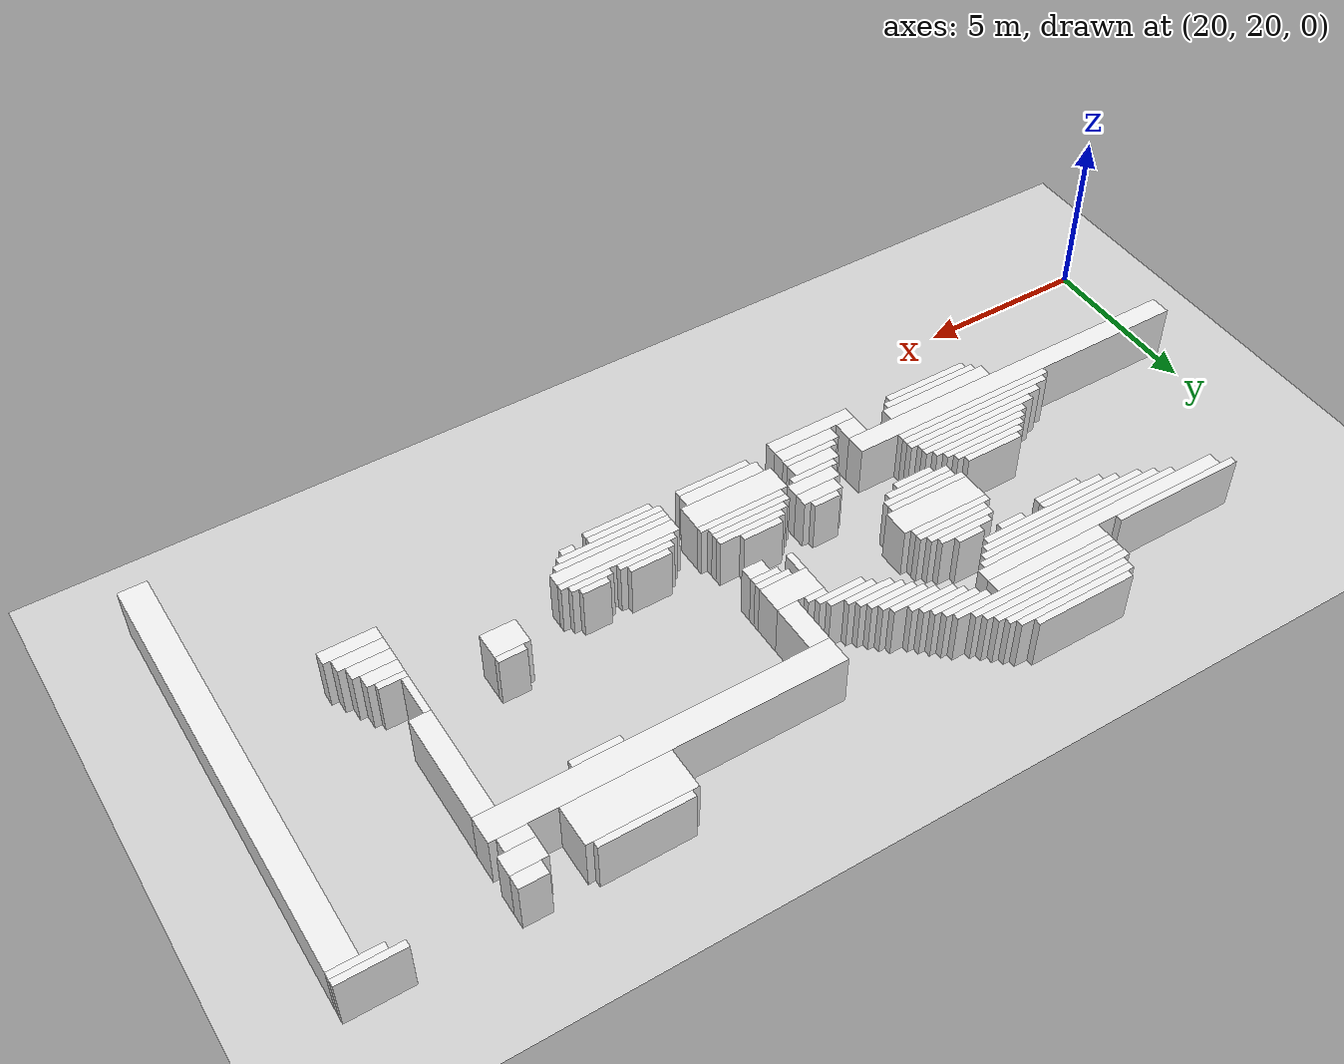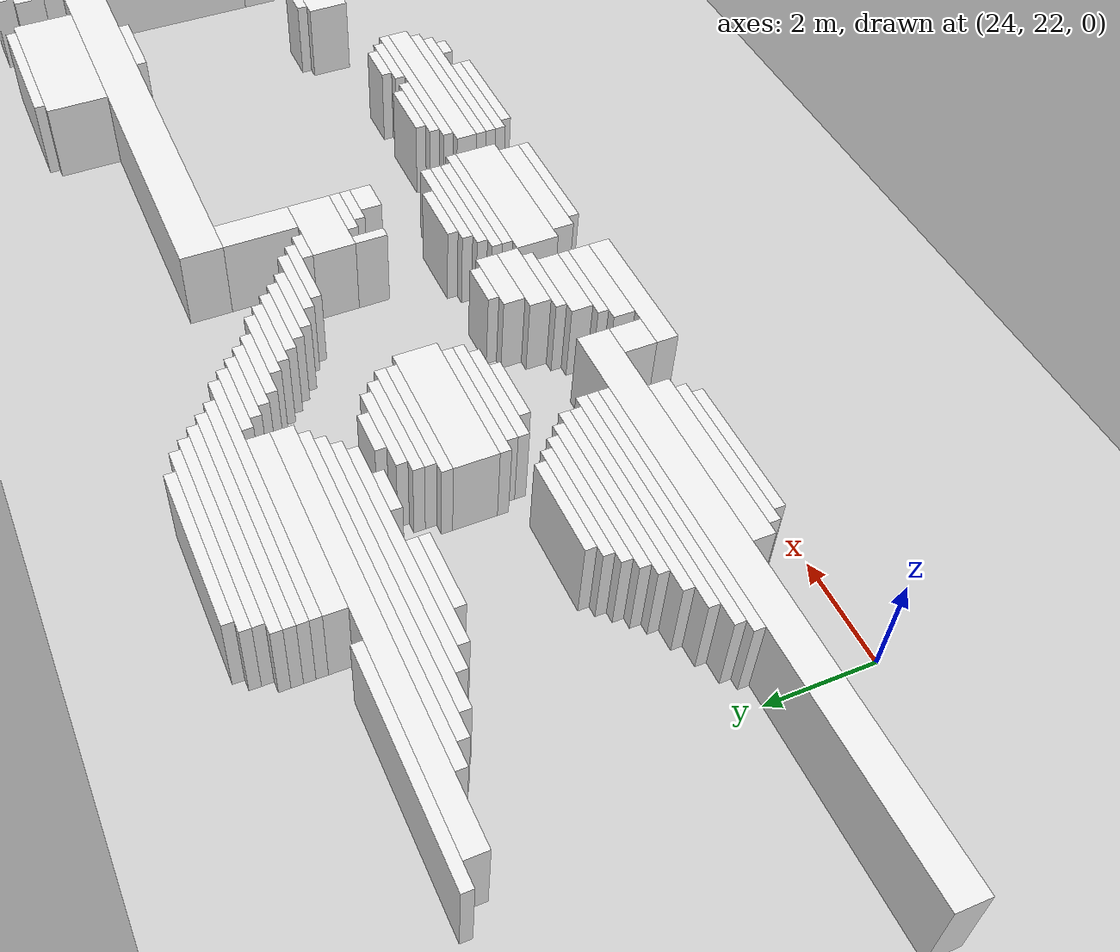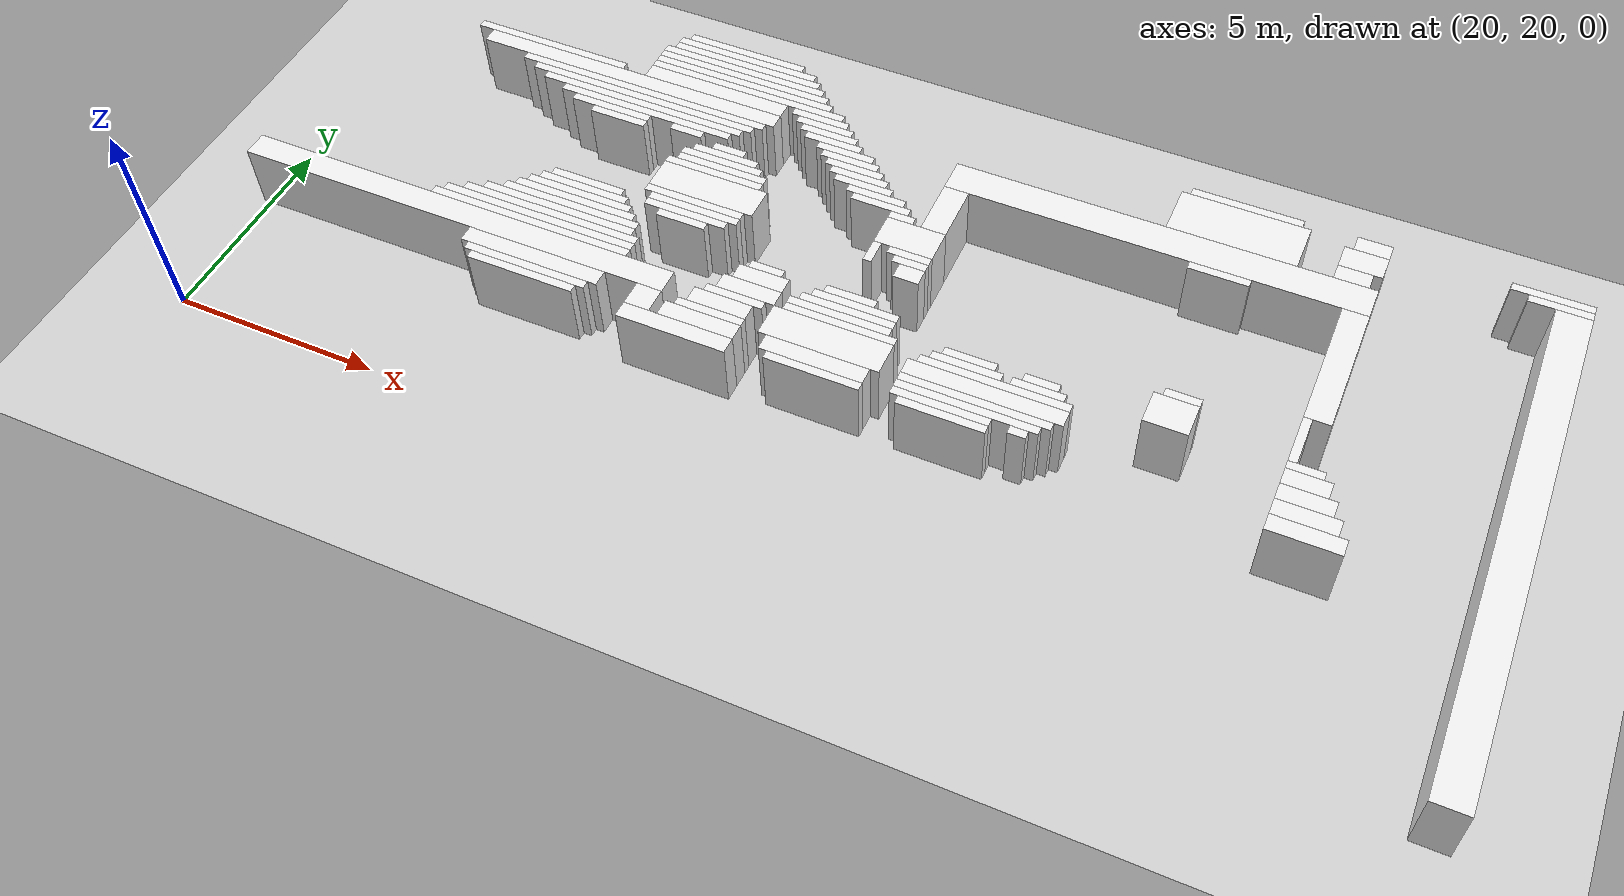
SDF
<sdf version="1.7">
 <world name="default">
  <model name="ground_plane">
   <static>1</static>
   <link name="link">
    <collision name="collision">
     <geometry><plane><normal>0 0 1</normal><size>120 120</size></plane></geometry>
    </collision>
    <visual name="visual">
     <geometry><plane><normal>0 0 1</normal><size>120 120</size></plane></geometry>
     <material>
      <script><uri>file://media/materials/scripts/gazebo.material</uri><name>Gazebo/Grey</name></script>
     </material>
    </visual>
   </link>
  </model>
  <model name="random_complex_02_model">
   <static>1</static>
   <link name="obs_727">
    <pose>28.9000 31.1000 0.8000 0 0 0</pose>
    <collision name="obs_727_col"><geometry><box><size>3.0000 0.2000 1.6000</size></box></geometry></collision>
    <visual name="obs_727_vis">
     <geometry><box><size>3.0000 0.2000 1.6000</size></box></geometry>
     <material>
      <script><uri>file://media/materials/scripts/gazebo.material</uri><name>Gazebo/White</name></script>
     </material>
    </visual>
   </link>
   <link name="obs_736">
    <pose>29.0000 30.9000 0.8000 0 0 0</pose>
    <collision name="obs_736_col"><geometry><box><size>3.6000 0.2000 1.6000</size></box></geometry></collision>
    <visual name="obs_736_vis">
     <geometry><box><size>3.6000 0.2000 1.6000</size></box></geometry>
     <material>
      <script><uri>file://media/materials/scripts/gazebo.material</uri><name>Gazebo/White</name></script>
     </material>
    </visual>
   </link>
   <link name="obs_737">
    <pose>41.5000 30.9000 0.8000 0 0 0</pose>
    <collision name="obs_737_col"><geometry><box><size>2.6000 0.2000 1.6000</size></box></geometry></collision>
    <visual name="obs_737_vis">
     <geometry><box><size>2.6000 0.2000 1.6000</size></box></geometry>
     <material>
      <script><uri>file://media/materials/scripts/gazebo.material</uri><name>Gazebo/White</name></script>
     </material>
    </visual>
   </link>
   <link name="obs_738">
    <pose>48.3000 30.9000 0.8000 0 0 0</pose>
    <collision name="obs_738_col"><geometry><box><size>1.8000 0.2000 1.6000</size></box></geometry></collision>
    <visual name="obs_738_vis">
     <geometry><box><size>1.8000 0.2000 1.6000</size></box></geometry>
     <material>
      <script><uri>file://media/materials/scripts/gazebo.material</uri><name>Gazebo/White</name></script>
     </material>
    </visual>
   </link>
   <link name="obs_742">
    <pose>44.4000 30.8000 0.8000 0 0 0</pose>
    <collision name="obs_742_col"><geometry><box><size>0.8000 0.4000 1.6000</size></box></geometry></collision>
    <visual name="obs_742_vis">
     <geometry><box><size>0.8000 0.4000 1.6000</size></box></geometry>
     <material>
      <script><uri>file://media/materials/scripts/gazebo.material</uri><name>Gazebo/White</name></script>
     </material>
    </visual>
   </link>
   <link name="obs_748">
    <pose>29.1000 30.7000 0.8000 0 0 0</pose>
    <collision name="obs_748_col"><geometry><box><size>3.8000 0.2000 1.6000</size></box></geometry></collision>
    <visual name="obs_748_vis">
     <geometry><box><size>3.8000 0.2000 1.6000</size></box></geometry>
     <material>
      <script><uri>file://media/materials/scripts/gazebo.material</uri><name>Gazebo/White</name></script>
     </material>
    </visual>
   </link>
   <link name="obs_749">
    <pose>48.5000 30.7000 0.8000 0 0 0</pose>
    <collision name="obs_749_col"><geometry><box><size>1.4000 0.2000 1.6000</size></box></geometry></collision>
    <visual name="obs_749_vis">
     <geometry><box><size>1.4000 0.2000 1.6000</size></box></geometry>
     <material>
      <script><uri>file://media/materials/scripts/gazebo.material</uri><name>Gazebo/White</name></script>
     </material>
    </visual>
   </link>
   <link name="obs_758">
    <pose>29.1000 30.5000 0.8000 0 0 0</pose>
    <collision name="obs_758_col"><geometry><box><size>4.2000 0.2000 1.6000</size></box></geometry></collision>
    <visual name="obs_758_vis">
     <geometry><box><size>4.2000 0.2000 1.6000</size></box></geometry>
     <material>
      <script><uri>file://media/materials/scripts/gazebo.material</uri><name>Gazebo/White</name></script>
     </material>
    </visual>
   </link>
   <link name="obs_764">
    <pose>29.2000 30.3000 0.8000 0 0 0</pose>
    <collision name="obs_764_col"><geometry><box><size>4.4000 0.2000 1.6000</size></box></geometry></collision>
    <visual name="obs_764_vis">
     <geometry><box><size>4.4000 0.2000 1.6000</size></box></geometry>
     <material>
      <script><uri>file://media/materials/scripts/gazebo.material</uri><name>Gazebo/White</name></script>
     </material>
    </visual>
   </link>
   <link name="obs_767">
    <pose>44.3000 30.3000 0.8000 0 0 0</pose>
    <collision name="obs_767_col"><geometry><box><size>1.0000 0.6000 1.6000</size></box></geometry></collision>
    <visual name="obs_767_vis">
     <geometry><box><size>1.0000 0.6000 1.6000</size></box></geometry>
     <material>
      <script><uri>file://media/materials/scripts/gazebo.material</uri><name>Gazebo/White</name></script>
     </material>
    </visual>
   </link>
   <link name="obs_772">
    <pose>29.3000 30.1000 0.8000 0 0 0</pose>
    <collision name="obs_772_col"><geometry><box><size>4.6000 0.2000 1.6000</size></box></geometry></collision>
    <visual name="obs_772_vis">
     <geometry><box><size>4.6000 0.2000 1.6000</size></box></geometry>
     <material>
      <script><uri>file://media/materials/scripts/gazebo.material</uri><name>Gazebo/White</name></script>
     </material>
    </visual>
   </link>
   <link name="obs_779">
    <pose>29.5000 29.9000 0.8000 0 0 0</pose>
    <collision name="obs_779_col"><geometry><box><size>5.0000 0.2000 1.6000</size></box></geometry></collision>
    <visual name="obs_779_vis">
     <geometry><box><size>5.0000 0.2000 1.6000</size></box></geometry>
     <material>
      <script><uri>file://media/materials/scripts/gazebo.material</uri><name>Gazebo/White</name></script>
     </material>
    </visual>
   </link>
   <link name="obs_780">
    <pose>41.5000 30.2000 0.8000 0 0 0</pose>
    <collision name="obs_780_col"><geometry><box><size>3.0000 1.2000 1.6000</size></box></geometry></collision>
    <visual name="obs_780_vis">
     <geometry><box><size>3.0000 1.2000 1.6000</size></box></geometry>
     <material>
      <script><uri>file://media/materials/scripts/gazebo.material</uri><name>Gazebo/White</name></script>
     </material>
    </visual>
   </link>
   <link name="obs_784">
    <pose>44.2000 29.8000 0.8000 0 0 0</pose>
    <collision name="obs_784_col"><geometry><box><size>0.8000 0.4000 1.6000</size></box></geometry></collision>
    <visual name="obs_784_vis">
     <geometry><box><size>0.8000 0.4000 1.6000</size></box></geometry>
     <material>
      <script><uri>file://media/materials/scripts/gazebo.material</uri><name>Gazebo/White</name></script>
     </material>
    </visual>
   </link>
   <link name="obs_790">
    <pose>31.5000 29.7000 0.8000 0 0 0</pose>
    <collision name="obs_790_col"><geometry><box><size>1.4000 0.2000 1.6000</size></box></geometry></collision>
    <visual name="obs_790_vis">
     <geometry><box><size>1.4000 0.2000 1.6000</size></box></geometry>
     <material>
      <script><uri>file://media/materials/scripts/gazebo.material</uri><name>Gazebo/White</name></script>
     </material>
    </visual>
   </link>
   <link name="obs_792">
    <pose>28.8000 29.6000 0.8000 0 0 0</pose>
    <collision name="obs_792_col"><geometry><box><size>3.6000 0.4000 1.6000</size></box></geometry></collision>
    <visual name="obs_792_vis">
     <geometry><box><size>3.6000 0.4000 1.6000</size></box></geometry>
     <material>
      <script><uri>file://media/materials/scripts/gazebo.material</uri><name>Gazebo/White</name></script>
     </material>
    </visual>
   </link>
   <link name="obs_797">
    <pose>24.4000 29.5000 0.8000 0 0 0</pose>
    <collision name="obs_797_col"><geometry><box><size>4.0000 0.2000 1.6000</size></box></geometry></collision>
    <visual name="obs_797_vis">
     <geometry><box><size>4.0000 0.2000 1.6000</size></box></geometry>
     <material>
      <script><uri>file://media/materials/scripts/gazebo.material</uri><name>Gazebo/White</name></script>
     </material>
    </visual>
   </link>
   <link name="obs_798">
    <pose>31.7000 29.5000 0.8000 0 0 0</pose>
    <collision name="obs_798_col"><geometry><box><size>1.4000 0.2000 1.6000</size></box></geometry></collision>
    <visual name="obs_798_vis">
     <geometry><box><size>1.4000 0.2000 1.6000</size></box></geometry>
     <material>
      <script><uri>file://media/materials/scripts/gazebo.material</uri><name>Gazebo/White</name></script>
     </material>
    </visual>
   </link>
   <link name="obs_804">
    <pose>31.9000 29.3000 0.8000 0 0 0</pose>
    <collision name="obs_804_col"><geometry><box><size>1.4000 0.2000 1.6000</size></box></geometry></collision>
    <visual name="obs_804_vis">
     <geometry><box><size>1.4000 0.2000 1.6000</size></box></geometry>
     <material>
      <script><uri>file://media/materials/scripts/gazebo.material</uri><name>Gazebo/White</name></script>
     </material>
    </visual>
   </link>
   <link name="obs_808">
    <pose>26.7000 29.2000 0.8000 0 0 0</pose>
    <collision name="obs_808_col"><geometry><box><size>7.8000 0.4000 1.6000</size></box></geometry></collision>
    <visual name="obs_808_vis">
     <geometry><box><size>7.8000 0.4000 1.6000</size></box></geometry>
     <material>
      <script><uri>file://media/materials/scripts/gazebo.material</uri><name>Gazebo/White</name></script>
     </material>
    </visual>
   </link>
   <link name="obs_813">
    <pose>32.1000 29.1000 0.8000 0 0 0</pose>
    <collision name="obs_813_col"><geometry><box><size>1.4000 0.2000 1.6000</size></box></geometry></collision>
    <visual name="obs_813_vis">
     <geometry><box><size>1.4000 0.2000 1.6000</size></box></geometry>
     <material>
      <script><uri>file://media/materials/scripts/gazebo.material</uri><name>Gazebo/White</name></script>
     </material>
    </visual>
   </link>
   <link name="obs_814">
    <pose>39.9000 29.2000 0.8000 0 0 0</pose>
    <collision name="obs_814_col"><geometry><box><size>9.8000 0.8000 1.6000</size></box></geometry></collision>
    <visual name="obs_814_vis">
     <geometry><box><size>9.8000 0.8000 1.6000</size></box></geometry>
     <material>
      <script><uri>file://media/materials/scripts/gazebo.material</uri><name>Gazebo/White</name></script>
     </material>
    </visual>
   </link>
   <link name="obs_823">
    <pose>27.2000 28.9000 0.8000 0 0 0</pose>
    <collision name="obs_823_col"><geometry><box><size>6.4000 0.2000 1.6000</size></box></geometry></collision>
    <visual name="obs_823_vis">
     <geometry><box><size>6.4000 0.2000 1.6000</size></box></geometry>
     <material>
      <script><uri>file://media/materials/scripts/gazebo.material</uri><name>Gazebo/White</name></script>
     </material>
    </visual>
   </link>
   <link name="obs_824">
    <pose>32.5000 28.9000 0.8000 0 0 0</pose>
    <collision name="obs_824_col"><geometry><box><size>1.4000 0.2000 1.6000</size></box></geometry></collision>
    <visual name="obs_824_vis">
     <geometry><box><size>1.4000 0.2000 1.6000</size></box></geometry>
     <material>
      <script><uri>file://media/materials/scripts/gazebo.material</uri><name>Gazebo/White</name></script>
     </material>
    </visual>
   </link>
   <link name="obs_832">
    <pose>27.3000 28.7000 0.8000 0 0 0</pose>
    <collision name="obs_832_col"><geometry><box><size>5.8000 0.2000 1.6000</size></box></geometry></collision>
    <visual name="obs_832_vis">
     <geometry><box><size>5.8000 0.2000 1.6000</size></box></geometry>
     <material>
      <script><uri>file://media/materials/scripts/gazebo.material</uri><name>Gazebo/White</name></script>
     </material>
    </visual>
   </link>
   <link name="obs_833">
    <pose>32.7000 28.7000 0.8000 0 0 0</pose>
    <collision name="obs_833_col"><geometry><box><size>1.4000 0.2000 1.6000</size></box></geometry></collision>
    <visual name="obs_833_vis">
     <geometry><box><size>1.4000 0.2000 1.6000</size></box></geometry>
     <material>
      <script><uri>file://media/materials/scripts/gazebo.material</uri><name>Gazebo/White</name></script>
     </material>
    </visual>
   </link>
   <link name="obs_834">
    <pose>41.5000 28.7000 0.8000 0 0 0</pose>
    <collision name="obs_834_col"><geometry><box><size>1.4000 0.2000 1.6000</size></box></geometry></collision>
    <visual name="obs_834_vis">
     <geometry><box><size>1.4000 0.2000 1.6000</size></box></geometry>
     <material>
      <script><uri>file://media/materials/scripts/gazebo.material</uri><name>Gazebo/White</name></script>
     </material>
    </visual>
   </link>
   <link name="obs_843">
    <pose>27.4000 28.5000 0.8000 0 0 0</pose>
    <collision name="obs_843_col"><geometry><box><size>5.2000 0.2000 1.6000</size></box></geometry></collision>
    <visual name="obs_843_vis">
     <geometry><box><size>5.2000 0.2000 1.6000</size></box></geometry>
     <material>
      <script><uri>file://media/materials/scripts/gazebo.material</uri><name>Gazebo/White</name></script>
     </material>
    </visual>
   </link>
   <link name="obs_844">
    <pose>32.9000 28.5000 0.8000 0 0 0</pose>
    <collision name="obs_844_col"><geometry><box><size>1.4000 0.2000 1.6000</size></box></geometry></collision>
    <visual name="obs_844_vis">
     <geometry><box><size>1.4000 0.2000 1.6000</size></box></geometry>
     <material>
      <script><uri>file://media/materials/scripts/gazebo.material</uri><name>Gazebo/White</name></script>
     </material>
    </visual>
   </link>
   <link name="obs_855">
    <pose>27.6000 28.3000 0.8000 0 0 0</pose>
    <collision name="obs_855_col"><geometry><box><size>4.4000 0.2000 1.6000</size></box></geometry></collision>
    <visual name="obs_855_vis">
     <geometry><box><size>4.4000 0.2000 1.6000</size></box></geometry>
     <material>
      <script><uri>file://media/materials/scripts/gazebo.material</uri><name>Gazebo/White</name></script>
     </material>
    </visual>
   </link>
   <link name="obs_856">
    <pose>33.1000 28.3000 0.8000 0 0 0</pose>
    <collision name="obs_856_col"><geometry><box><size>1.4000 0.2000 1.6000</size></box></geometry></collision>
    <visual name="obs_856_vis">
     <geometry><box><size>1.4000 0.2000 1.6000</size></box></geometry>
     <material>
      <script><uri>file://media/materials/scripts/gazebo.material</uri><name>Gazebo/White</name></script>
     </material>
    </visual>
   </link>
   <link name="obs_862">
    <pose>26.8000 28.1000 0.8000 0 0 0</pose>
    <collision name="obs_862_col"><geometry><box><size>2.0000 0.2000 1.6000</size></box></geometry></collision>
    <visual name="obs_862_vis">
     <geometry><box><size>2.0000 0.2000 1.6000</size></box></geometry>
     <material>
      <script><uri>file://media/materials/scripts/gazebo.material</uri><name>Gazebo/White</name></script>
     </material>
    </visual>
   </link>
   <link name="obs_863">
    <pose>28.8000 28.1000 0.8000 0 0 0</pose>
    <collision name="obs_863_col"><geometry><box><size>0.8000 0.2000 1.6000</size></box></geometry></collision>
    <visual name="obs_863_vis">
     <geometry><box><size>0.8000 0.2000 1.6000</size></box></geometry>
     <material>
      <script><uri>file://media/materials/scripts/gazebo.material</uri><name>Gazebo/White</name></script>
     </material>
    </visual>
   </link>
   <link name="obs_864">
    <pose>33.3000 28.1000 0.8000 0 0 0</pose>
    <collision name="obs_864_col"><geometry><box><size>1.4000 0.2000 1.6000</size></box></geometry></collision>
    <visual name="obs_864_vis">
     <geometry><box><size>1.4000 0.2000 1.6000</size></box></geometry>
     <material>
      <script><uri>file://media/materials/scripts/gazebo.material</uri><name>Gazebo/White</name></script>
     </material>
    </visual>
   </link>
   <link name="obs_871">
    <pose>27.1000 27.9000 0.8000 0 0 0</pose>
    <collision name="obs_871_col"><geometry><box><size>1.4000 0.2000 1.6000</size></box></geometry></collision>
    <visual name="obs_871_vis">
     <geometry><box><size>1.4000 0.2000 1.6000</size></box></geometry>
     <material>
      <script><uri>file://media/materials/scripts/gazebo.material</uri><name>Gazebo/White</name></script>
     </material>
    </visual>
   </link>
   <link name="obs_872">
    <pose>30.0000 27.9000 0.8000 0 0 0</pose>
    <collision name="obs_872_col"><geometry><box><size>0.8000 0.2000 1.6000</size></box></geometry></collision>
    <visual name="obs_872_vis">
     <geometry><box><size>0.8000 0.2000 1.6000</size></box></geometry>
     <material>
      <script><uri>file://media/materials/scripts/gazebo.material</uri><name>Gazebo/White</name></script>
     </material>
    </visual>
   </link>
   <link name="obs_873">
    <pose>33.7000 27.9000 0.8000 0 0 0</pose>
    <collision name="obs_873_col"><geometry><box><size>1.4000 0.2000 1.6000</size></box></geometry></collision>
    <visual name="obs_873_vis">
     <geometry><box><size>1.4000 0.2000 1.6000</size></box></geometry>
     <material>
      <script><uri>file://media/materials/scripts/gazebo.material</uri><name>Gazebo/White</name></script>
     </material>
    </visual>
   </link>
   <link name="obs_881">
    <pose>30.0000 27.7000 0.8000 0 0 0</pose>
    <collision name="obs_881_col"><geometry><box><size>1.6000 0.2000 1.6000</size></box></geometry></collision>
    <visual name="obs_881_vis">
     <geometry><box><size>1.6000 0.2000 1.6000</size></box></geometry>
     <material>
      <script><uri>file://media/materials/scripts/gazebo.material</uri><name>Gazebo/White</name></script>
     </material>
    </visual>
   </link>
   <link name="obs_882">
    <pose>33.9000 27.7000 0.8000 0 0 0</pose>
    <collision name="obs_882_col"><geometry><box><size>1.4000 0.2000 1.6000</size></box></geometry></collision>
    <visual name="obs_882_vis">
     <geometry><box><size>1.4000 0.2000 1.6000</size></box></geometry>
     <material>
      <script><uri>file://media/materials/scripts/gazebo.material</uri><name>Gazebo/White</name></script>
     </material>
    </visual>
   </link>
   <link name="obs_883">
    <pose>35.3000 28.1000 0.8000 0 0 0</pose>
    <collision name="obs_883_col"><geometry><box><size>0.6000 1.4000 1.6000</size></box></geometry></collision>
    <visual name="obs_883_vis">
     <geometry><box><size>0.6000 1.4000 1.6000</size></box></geometry>
     <material>
      <script><uri>file://media/materials/scripts/gazebo.material</uri><name>Gazebo/White</name></script>
     </material>
    </visual>
   </link>
   <link name="obs_890">
    <pose>30.0000 27.5000 0.8000 0 0 0</pose>
    <collision name="obs_890_col"><geometry><box><size>2.0000 0.2000 1.6000</size></box></geometry></collision>
    <visual name="obs_890_vis">
     <geometry><box><size>2.0000 0.2000 1.6000</size></box></geometry>
     <material>
      <script><uri>file://media/materials/scripts/gazebo.material</uri><name>Gazebo/White</name></script>
     </material>
    </visual>
   </link>
   <link name="obs_891">
    <pose>34.5000 27.5000 0.8000 0 0 0</pose>
    <collision name="obs_891_col"><geometry><box><size>0.6000 0.2000 1.6000</size></box></geometry></collision>
    <visual name="obs_891_vis">
     <geometry><box><size>0.6000 0.2000 1.6000</size></box></geometry>
     <material>
      <script><uri>file://media/materials/scripts/gazebo.material</uri><name>Gazebo/White</name></script>
     </material>
    </visual>
   </link>
   <link name="obs_897">
    <pose>30.1000 27.3000 0.8000 0 0 0</pose>
    <collision name="obs_897_col"><geometry><box><size>2.2000 0.2000 1.6000</size></box></geometry></collision>
    <visual name="obs_897_vis">
     <geometry><box><size>2.2000 0.2000 1.6000</size></box></geometry>
     <material>
      <script><uri>file://media/materials/scripts/gazebo.material</uri><name>Gazebo/White</name></script>
     </material>
    </visual>
   </link>
   <link name="obs_904">
    <pose>30.0000 27.1000 0.8000 0 0 0</pose>
    <collision name="obs_904_col"><geometry><box><size>2.4000 0.2000 1.6000</size></box></geometry></collision>
    <visual name="obs_904_vis">
     <geometry><box><size>2.4000 0.2000 1.6000</size></box></geometry>
     <material>
      <script><uri>file://media/materials/scripts/gazebo.material</uri><name>Gazebo/White</name></script>
     </material>
    </visual>
   </link>
   <link name="obs_914">
    <pose>34.9000 27.0000 0.8000 0 0 0</pose>
    <collision name="obs_914_col"><geometry><box><size>1.4000 0.8000 1.6000</size></box></geometry></collision>
    <visual name="obs_914_vis">
     <geometry><box><size>1.4000 0.8000 1.6000</size></box></geometry>
     <material>
      <script><uri>file://media/materials/scripts/gazebo.material</uri><name>Gazebo/White</name></script>
     </material>
    </visual>
   </link>
   <link name="obs_925">
    <pose>35.1000 26.5000 0.8000 0 0 0</pose>
    <collision name="obs_925_col"><geometry><box><size>1.0000 0.2000 1.6000</size></box></geometry></collision>
    <visual name="obs_925_vis">
     <geometry><box><size>1.0000 0.2000 1.6000</size></box></geometry>
     <material>
      <script><uri>file://media/materials/scripts/gazebo.material</uri><name>Gazebo/White</name></script>
     </material>
    </visual>
   </link>
   <link name="obs_926">
    <pose>30.1000 26.6000 0.8000 0 0 0</pose>
    <collision name="obs_926_col"><geometry><box><size>2.6000 0.8000 1.6000</size></box></geometry></collision>
    <visual name="obs_926_vis">
     <geometry><box><size>2.6000 0.8000 1.6000</size></box></geometry>
     <material>
      <script><uri>file://media/materials/scripts/gazebo.material</uri><name>Gazebo/White</name></script>
     </material>
    </visual>
   </link>
   <link name="obs_935">
    <pose>35.2000 26.3000 0.8000 0 0 0</pose>
    <collision name="obs_935_col"><geometry><box><size>0.8000 0.2000 1.6000</size></box></geometry></collision>
    <visual name="obs_935_vis">
     <geometry><box><size>0.8000 0.2000 1.6000</size></box></geometry>
     <material>
      <script><uri>file://media/materials/scripts/gazebo.material</uri><name>Gazebo/White</name></script>
     </material>
    </visual>
   </link>
   <link name="obs_937">
    <pose>34.3000 26.3000 0.8000 0 0 0</pose>
    <collision name="obs_937_col"><geometry><box><size>0.2000 0.6000 1.6000</size></box></geometry></collision>
    <visual name="obs_937_vis">
     <geometry><box><size>0.2000 0.6000 1.6000</size></box></geometry>
     <material>
      <script><uri>file://media/materials/scripts/gazebo.material</uri><name>Gazebo/White</name></script>
     </material>
    </visual>
   </link>
   <link name="obs_942">
    <pose>30.0000 26.1000 0.8000 0 0 0</pose>
    <collision name="obs_942_col"><geometry><box><size>2.4000 0.2000 1.6000</size></box></geometry></collision>
    <visual name="obs_942_vis">
     <geometry><box><size>2.4000 0.2000 1.6000</size></box></geometry>
     <material>
      <script><uri>file://media/materials/scripts/gazebo.material</uri><name>Gazebo/White</name></script>
     </material>
    </visual>
   </link>
   <link name="obs_947">
    <pose>35.3000 26.0000 0.8000 0 0 0</pose>
    <collision name="obs_947_col"><geometry><box><size>0.6000 0.4000 1.6000</size></box></geometry></collision>
    <visual name="obs_947_vis">
     <geometry><box><size>0.6000 0.4000 1.6000</size></box></geometry>
     <material>
      <script><uri>file://media/materials/scripts/gazebo.material</uri><name>Gazebo/White</name></script>
     </material>
    </visual>
   </link>
   <link name="obs_951">
    <pose>30.1000 25.9000 0.8000 0 0 0</pose>
    <collision name="obs_951_col"><geometry><box><size>2.2000 0.2000 1.6000</size></box></geometry></collision>
    <visual name="obs_951_vis">
     <geometry><box><size>2.2000 0.2000 1.6000</size></box></geometry>
     <material>
      <script><uri>file://media/materials/scripts/gazebo.material</uri><name>Gazebo/White</name></script>
     </material>
    </visual>
   </link>
   <link name="obs_952">
    <pose>44.5000 27.2000 0.8000 0 0 0</pose>
    <collision name="obs_952_col"><geometry><box><size>0.6000 3.2000 1.6000</size></box></geometry></collision>
    <visual name="obs_952_vis">
     <geometry><box><size>0.6000 3.2000 1.6000</size></box></geometry>
     <material>
      <script><uri>file://media/materials/scripts/gazebo.material</uri><name>Gazebo/White</name></script>
     </material>
    </visual>
   </link>
   <link name="obs_960">
    <pose>27.5000 25.7000 0.8000 0 0 0</pose>
    <collision name="obs_960_col"><geometry><box><size>1.8000 0.2000 1.6000</size></box></geometry></collision>
    <visual name="obs_960_vis">
     <geometry><box><size>1.8000 0.2000 1.6000</size></box></geometry>
     <material>
      <script><uri>file://media/materials/scripts/gazebo.material</uri><name>Gazebo/White</name></script>
     </material>
    </visual>
   </link>
   <link name="obs_961">
    <pose>30.0000 25.7000 0.8000 0 0 0</pose>
    <collision name="obs_961_col"><geometry><box><size>2.0000 0.2000 1.6000</size></box></geometry></collision>
    <visual name="obs_961_vis">
     <geometry><box><size>2.0000 0.2000 1.6000</size></box></geometry>
     <material>
      <script><uri>file://media/materials/scripts/gazebo.material</uri><name>Gazebo/White</name></script>
     </material>
    </visual>
   </link>
   <link name="obs_968">
    <pose>27.5000 25.5000 0.8000 0 0 0</pose>
    <collision name="obs_968_col"><geometry><box><size>2.2000 0.2000 1.6000</size></box></geometry></collision>
    <visual name="obs_968_vis">
     <geometry><box><size>2.2000 0.2000 1.6000</size></box></geometry>
     <material>
      <script><uri>file://media/materials/scripts/gazebo.material</uri><name>Gazebo/White</name></script>
     </material>
    </visual>
   </link>
   <link name="obs_969">
    <pose>30.0000 25.5000 0.8000 0 0 0</pose>
    <collision name="obs_969_col"><geometry><box><size>1.2000 0.2000 1.6000</size></box></geometry></collision>
    <visual name="obs_969_vis">
     <geometry><box><size>1.2000 0.2000 1.6000</size></box></geometry>
     <material>
      <script><uri>file://media/materials/scripts/gazebo.material</uri><name>Gazebo/White</name></script>
     </material>
    </visual>
   </link>
   <link name="obs_975">
    <pose>27.5000 25.3000 0.8000 0 0 0</pose>
    <collision name="obs_975_col"><geometry><box><size>2.6000 0.2000 1.6000</size></box></geometry></collision>
    <visual name="obs_975_vis">
     <geometry><box><size>2.6000 0.2000 1.6000</size></box></geometry>
     <material>
      <script><uri>file://media/materials/scripts/gazebo.material</uri><name>Gazebo/White</name></script>
     </material>
    </visual>
   </link>
   <link name="obs_982">
    <pose>27.5000 25.1000 0.8000 0 0 0</pose>
    <collision name="obs_982_col"><geometry><box><size>3.0000 0.2000 1.6000</size></box></geometry></collision>
    <visual name="obs_982_vis">
     <geometry><box><size>3.0000 0.2000 1.6000</size></box></geometry>
     <material>
      <script><uri>file://media/materials/scripts/gazebo.material</uri><name>Gazebo/White</name></script>
     </material>
    </visual>
   </link>
   <link name="obs_983">
    <pose>41.8000 25.1000 0.8000 0 0 0</pose>
    <collision name="obs_983_col"><geometry><box><size>0.8000 0.2000 1.6000</size></box></geometry></collision>
    <visual name="obs_983_vis">
     <geometry><box><size>0.8000 0.2000 1.6000</size></box></geometry>
     <material>
      <script><uri>file://media/materials/scripts/gazebo.material</uri><name>Gazebo/White</name></script>
     </material>
    </visual>
   </link>
   <link name="obs_990">
    <pose>27.5000 24.9000 0.8000 0 0 0</pose>
    <collision name="obs_990_col"><geometry><box><size>3.4000 0.2000 1.6000</size></box></geometry></collision>
    <visual name="obs_990_vis">
     <geometry><box><size>3.4000 0.2000 1.6000</size></box></geometry>
     <material>
      <script><uri>file://media/materials/scripts/gazebo.material</uri><name>Gazebo/White</name></script>
     </material>
    </visual>
   </link>
   <link name="obs_991">
    <pose>32.4000 24.9000 0.8000 0 0 0</pose>
    <collision name="obs_991_col"><geometry><box><size>0.8000 0.2000 1.6000</size></box></geometry></collision>
    <visual name="obs_991_vis">
     <geometry><box><size>0.8000 0.2000 1.6000</size></box></geometry>
     <material>
      <script><uri>file://media/materials/scripts/gazebo.material</uri><name>Gazebo/White</name></script>
     </material>
    </visual>
   </link>
   <link name="obs_992">
    <pose>34.4000 24.9000 0.8000 0 0 0</pose>
    <collision name="obs_992_col"><geometry><box><size>1.2000 0.2000 1.6000</size></box></geometry></collision>
    <visual name="obs_992_vis">
     <geometry><box><size>1.2000 0.2000 1.6000</size></box></geometry>
     <material>
      <script><uri>file://media/materials/scripts/gazebo.material</uri><name>Gazebo/White</name></script>
     </material>
    </visual>
   </link>
   <link name="obs_1003">
    <pose>27.3000 24.7000 0.8000 0 0 0</pose>
    <collision name="obs_1003_col"><geometry><box><size>3.8000 0.2000 1.6000</size></box></geometry></collision>
    <visual name="obs_1003_vis">
     <geometry><box><size>3.8000 0.2000 1.6000</size></box></geometry>
     <material>
      <script><uri>file://media/materials/scripts/gazebo.material</uri><name>Gazebo/White</name></script>
     </material>
    </visual>
   </link>
   <link name="obs_1004">
    <pose>34.6000 24.7000 0.8000 0 0 0</pose>
    <collision name="obs_1004_col"><geometry><box><size>2.0000 0.2000 1.6000</size></box></geometry></collision>
    <visual name="obs_1004_vis">
     <geometry><box><size>2.0000 0.2000 1.6000</size></box></geometry>
     <material>
      <script><uri>file://media/materials/scripts/gazebo.material</uri><name>Gazebo/White</name></script>
     </material>
    </visual>
   </link>
   <link name="obs_1005">
    <pose>44.3000 25.0000 0.8000 0 0 0</pose>
    <collision name="obs_1005_col"><geometry><box><size>0.2000 1.2000 1.6000</size></box></geometry></collision>
    <visual name="obs_1005_vis">
     <geometry><box><size>0.2000 1.2000 1.6000</size></box></geometry>
     <material>
      <script><uri>file://media/materials/scripts/gazebo.material</uri><name>Gazebo/White</name></script>
     </material>
    </visual>
   </link>
   <link name="obs_1008">
    <pose>32.4000 24.6000 0.8000 0 0 0</pose>
    <collision name="obs_1008_col"><geometry><box><size>1.2000 0.4000 1.6000</size></box></geometry></collision>
    <visual name="obs_1008_vis">
     <geometry><box><size>1.2000 0.4000 1.6000</size></box></geometry>
     <material>
      <script><uri>file://media/materials/scripts/gazebo.material</uri><name>Gazebo/White</name></script>
     </material>
    </visual>
   </link>
   <link name="obs_1016">
    <pose>27.2000 24.5000 0.8000 0 0 0</pose>
    <collision name="obs_1016_col"><geometry><box><size>4.4000 0.2000 1.6000</size></box></geometry></collision>
    <visual name="obs_1016_vis">
     <geometry><box><size>4.4000 0.2000 1.6000</size></box></geometry>
     <material>
      <script><uri>file://media/materials/scripts/gazebo.material</uri><name>Gazebo/White</name></script>
     </material>
    </visual>
   </link>
   <link name="obs_1017">
    <pose>34.5000 24.5000 0.8000 0 0 0</pose>
    <collision name="obs_1017_col"><geometry><box><size>2.2000 0.2000 1.6000</size></box></geometry></collision>
    <visual name="obs_1017_vis">
     <geometry><box><size>2.2000 0.2000 1.6000</size></box></geometry>
     <material>
      <script><uri>file://media/materials/scripts/gazebo.material</uri><name>Gazebo/White</name></script>
     </material>
    </visual>
   </link>
   <link name="obs_1018">
    <pose>41.7000 24.6000 0.8000 0 0 0</pose>
    <collision name="obs_1018_col"><geometry><box><size>1.0000 0.8000 1.6000</size></box></geometry></collision>
    <visual name="obs_1018_vis">
     <geometry><box><size>1.0000 0.8000 1.6000</size></box></geometry>
     <material>
      <script><uri>file://media/materials/scripts/gazebo.material</uri><name>Gazebo/White</name></script>
     </material>
    </visual>
   </link>
   <link name="obs_1027">
    <pose>27.0000 24.3000 0.8000 0 0 0</pose>
    <collision name="obs_1027_col"><geometry><box><size>4.8000 0.2000 1.6000</size></box></geometry></collision>
    <visual name="obs_1027_vis">
     <geometry><box><size>4.8000 0.2000 1.6000</size></box></geometry>
     <material>
      <script><uri>file://media/materials/scripts/gazebo.material</uri><name>Gazebo/White</name></script>
     </material>
    </visual>
   </link>
   <link name="obs_1028">
    <pose>34.4000 24.3000 0.8000 0 0 0</pose>
    <collision name="obs_1028_col"><geometry><box><size>2.4000 0.2000 1.6000</size></box></geometry></collision>
    <visual name="obs_1028_vis">
     <geometry><box><size>2.4000 0.2000 1.6000</size></box></geometry>
     <material>
      <script><uri>file://media/materials/scripts/gazebo.material</uri><name>Gazebo/White</name></script>
     </material>
    </visual>
   </link>
   <link name="obs_1029">
    <pose>37.4000 24.3000 0.8000 0 0 0</pose>
    <collision name="obs_1029_col"><geometry><box><size>1.2000 0.2000 1.6000</size></box></geometry></collision>
    <visual name="obs_1029_vis">
     <geometry><box><size>1.2000 0.2000 1.6000</size></box></geometry>
     <material>
      <script><uri>file://media/materials/scripts/gazebo.material</uri><name>Gazebo/White</name></script>
     </material>
    </visual>
   </link>
   <link name="obs_1030">
    <pose>39.0000 24.3000 0.8000 0 0 0</pose>
    <collision name="obs_1030_col"><geometry><box><size>0.8000 0.2000 1.6000</size></box></geometry></collision>
    <visual name="obs_1030_vis">
     <geometry><box><size>0.8000 0.2000 1.6000</size></box></geometry>
     <material>
      <script><uri>file://media/materials/scripts/gazebo.material</uri><name>Gazebo/White</name></script>
     </material>
    </visual>
   </link>
   <link name="obs_1031">
    <pose>44.6000 24.3000 0.8000 0 0 0</pose>
    <collision name="obs_1031_col"><geometry><box><size>0.8000 0.2000 1.6000</size></box></geometry></collision>
    <visual name="obs_1031_vis">
     <geometry><box><size>0.8000 0.2000 1.6000</size></box></geometry>
     <material>
      <script><uri>file://media/materials/scripts/gazebo.material</uri><name>Gazebo/White</name></script>
     </material>
    </visual>
   </link>
   <link name="obs_1034">
    <pose>32.3000 24.2000 0.8000 0 0 0</pose>
    <collision name="obs_1034_col"><geometry><box><size>1.4000 0.4000 1.6000</size></box></geometry></collision>
    <visual name="obs_1034_vis">
     <geometry><box><size>1.4000 0.4000 1.6000</size></box></geometry>
     <material>
      <script><uri>file://media/materials/scripts/gazebo.material</uri><name>Gazebo/White</name></script>
     </material>
    </visual>
   </link>
   <link name="obs_1043">
    <pose>26.9000 24.1000 0.8000 0 0 0</pose>
    <collision name="obs_1043_col"><geometry><box><size>5.0000 0.2000 1.6000</size></box></geometry></collision>
    <visual name="obs_1043_vis">
     <geometry><box><size>5.0000 0.2000 1.6000</size></box></geometry>
     <material>
      <script><uri>file://media/materials/scripts/gazebo.material</uri><name>Gazebo/White</name></script>
     </material>
    </visual>
   </link>
   <link name="obs_1044">
    <pose>34.5000 24.1000 0.8000 0 0 0</pose>
    <collision name="obs_1044_col"><geometry><box><size>2.6000 0.2000 1.6000</size></box></geometry></collision>
    <visual name="obs_1044_vis">
     <geometry><box><size>2.6000 0.2000 1.6000</size></box></geometry>
     <material>
      <script><uri>file://media/materials/scripts/gazebo.material</uri><name>Gazebo/White</name></script>
     </material>
    </visual>
   </link>
   <link name="obs_1045">
    <pose>37.4000 24.1000 0.8000 0 0 0</pose>
    <collision name="obs_1045_col"><geometry><box><size>1.6000 0.2000 1.6000</size></box></geometry></collision>
    <visual name="obs_1045_vis">
     <geometry><box><size>1.6000 0.2000 1.6000</size></box></geometry>
     <material>
      <script><uri>file://media/materials/scripts/gazebo.material</uri><name>Gazebo/White</name></script>
     </material>
    </visual>
   </link>
   <link name="obs_1046">
    <pose>39.0000 24.1000 0.8000 0 0 0</pose>
    <collision name="obs_1046_col"><geometry><box><size>1.2000 0.2000 1.6000</size></box></geometry></collision>
    <visual name="obs_1046_vis">
     <geometry><box><size>1.2000 0.2000 1.6000</size></box></geometry>
     <material>
      <script><uri>file://media/materials/scripts/gazebo.material</uri><name>Gazebo/White</name></script>
     </material>
    </visual>
   </link>
   <link name="obs_1048">
    <pose>44.7000 24.0000 0.8000 0 0 0</pose>
    <collision name="obs_1048_col"><geometry><box><size>1.0000 0.4000 1.6000</size></box></geometry></collision>
    <visual name="obs_1048_vis">
     <geometry><box><size>1.0000 0.4000 1.6000</size></box></geometry>
     <material>
      <script><uri>file://media/materials/scripts/gazebo.material</uri><name>Gazebo/White</name></script>
     </material>
    </visual>
   </link>
   <link name="obs_1056">
    <pose>32.1000 23.9000 0.8000 0 0 0</pose>
    <collision name="obs_1056_col"><geometry><box><size>1.4000 0.2000 1.6000</size></box></geometry></collision>
    <visual name="obs_1056_vis">
     <geometry><box><size>1.4000 0.2000 1.6000</size></box></geometry>
     <material>
      <script><uri>file://media/materials/scripts/gazebo.material</uri><name>Gazebo/White</name></script>
     </material>
    </visual>
   </link>
   <link name="obs_1057">
    <pose>38.1000 23.9000 0.8000 0 0 0</pose>
    <collision name="obs_1057_col"><geometry><box><size>3.4000 0.2000 1.6000</size></box></geometry></collision>
    <visual name="obs_1057_vis">
     <geometry><box><size>3.4000 0.2000 1.6000</size></box></geometry>
     <material>
      <script><uri>file://media/materials/scripts/gazebo.material</uri><name>Gazebo/White</name></script>
     </material>
    </visual>
   </link>
   <link name="obs_1066">
    <pose>25.2000 23.7000 0.8000 0 0 0</pose>
    <collision name="obs_1066_col"><geometry><box><size>10.8000 0.6000 1.6000</size></box></geometry></collision>
    <visual name="obs_1066_vis">
     <geometry><box><size>10.8000 0.6000 1.6000</size></box></geometry>
     <material>
      <script><uri>file://media/materials/scripts/gazebo.material</uri><name>Gazebo/White</name></script>
     </material>
    </visual>
   </link>
   <link name="obs_1067">
    <pose>31.9000 23.6000 0.8000 0 0 0</pose>
    <collision name="obs_1067_col"><geometry><box><size>1.4000 0.4000 1.6000</size></box></geometry></collision>
    <visual name="obs_1067_vis">
     <geometry><box><size>1.4000 0.4000 1.6000</size></box></geometry>
     <material>
      <script><uri>file://media/materials/scripts/gazebo.material</uri><name>Gazebo/White</name></script>
     </material>
    </visual>
   </link>
   <link name="obs_1068">
    <pose>38.0000 23.6000 0.8000 0 0 0</pose>
    <collision name="obs_1068_col"><geometry><box><size>3.6000 0.4000 1.6000</size></box></geometry></collision>
    <visual name="obs_1068_vis">
     <geometry><box><size>3.6000 0.4000 1.6000</size></box></geometry>
     <material>
      <script><uri>file://media/materials/scripts/gazebo.material</uri><name>Gazebo/White</name></script>
     </material>
    </visual>
   </link>
   <link name="obs_1069">
    <pose>44.8000 23.6000 0.8000 0 0 0</pose>
    <collision name="obs_1069_col"><geometry><box><size>1.2000 0.4000 1.6000</size></box></geometry></collision>
    <visual name="obs_1069_vis">
     <geometry><box><size>1.2000 0.4000 1.6000</size></box></geometry>
     <material>
      <script><uri>file://media/materials/scripts/gazebo.material</uri><name>Gazebo/White</name></script>
     </material>
    </visual>
   </link>
   <link name="obs_1078">
    <pose>34.4000 23.6000 0.8000 0 0 0</pose>
    <collision name="obs_1078_col"><geometry><box><size>2.8000 0.8000 1.6000</size></box></geometry></collision>
    <visual name="obs_1078_vis">
     <geometry><box><size>2.8000 0.8000 1.6000</size></box></geometry>
     <material>
      <script><uri>file://media/materials/scripts/gazebo.material</uri><name>Gazebo/White</name></script>
     </material>
    </visual>
   </link>
   <link name="obs_1083">
    <pose>31.8000 23.3000 0.8000 0 0 0</pose>
    <collision name="obs_1083_col"><geometry><box><size>1.6000 0.2000 1.6000</size></box></geometry></collision>
    <visual name="obs_1083_vis">
     <geometry><box><size>1.6000 0.2000 1.6000</size></box></geometry>
     <material>
      <script><uri>file://media/materials/scripts/gazebo.material</uri><name>Gazebo/White</name></script>
     </material>
    </visual>
   </link>
   <link name="obs_1084">
    <pose>37.9000 23.3000 0.8000 0 0 0</pose>
    <collision name="obs_1084_col"><geometry><box><size>3.4000 0.2000 1.6000</size></box></geometry></collision>
    <visual name="obs_1084_vis">
     <geometry><box><size>3.4000 0.2000 1.6000</size></box></geometry>
     <material>
      <script><uri>file://media/materials/scripts/gazebo.material</uri><name>Gazebo/White</name></script>
     </material>
    </visual>
   </link>
   <link name="obs_1086">
    <pose>27.5000 23.2000 0.8000 0 0 0</pose>
    <collision name="obs_1086_col"><geometry><box><size>3.4000 0.4000 1.6000</size></box></geometry></collision>
    <visual name="obs_1086_vis">
     <geometry><box><size>3.4000 0.4000 1.6000</size></box></geometry>
     <material>
      <script><uri>file://media/materials/scripts/gazebo.material</uri><name>Gazebo/White</name></script>
     </material>
    </visual>
   </link>
   <link name="obs_1087">
    <pose>44.9000 23.2000 0.8000 0 0 0</pose>
    <collision name="obs_1087_col"><geometry><box><size>1.4000 0.4000 1.6000</size></box></geometry></collision>
    <visual name="obs_1087_vis">
     <geometry><box><size>1.4000 0.4000 1.6000</size></box></geometry>
     <material>
      <script><uri>file://media/materials/scripts/gazebo.material</uri><name>Gazebo/White</name></script>
     </material>
    </visual>
   </link>
   <link name="obs_1092">
    <pose>37.8000 23.1000 0.8000 0 0 0</pose>
    <collision name="obs_1092_col"><geometry><box><size>3.2000 0.2000 1.6000</size></box></geometry></collision>
    <visual name="obs_1092_vis">
     <geometry><box><size>3.2000 0.2000 1.6000</size></box></geometry>
     <material>
      <script><uri>file://media/materials/scripts/gazebo.material</uri><name>Gazebo/White</name></script>
     </material>
    </visual>
   </link>
   <link name="obs_1093">
    <pose>30.3000 23.1000 0.8000 0 0 0</pose>
    <collision name="obs_1093_col"><geometry><box><size>0.6000 0.6000 1.6000</size></box></geometry></collision>
    <visual name="obs_1093_vis">
     <geometry><box><size>0.6000 0.6000 1.6000</size></box></geometry>
     <material>
      <script><uri>file://media/materials/scripts/gazebo.material</uri><name>Gazebo/White</name></script>
     </material>
    </visual>
   </link>
   <link name="obs_1095">
    <pose>31.7000 23.0000 0.8000 0 0 0</pose>
    <collision name="obs_1095_col"><geometry><box><size>1.8000 0.4000 1.6000</size></box></geometry></collision>
    <visual name="obs_1095_vis">
     <geometry><box><size>1.8000 0.4000 1.6000</size></box></geometry>
     <material>
      <script><uri>file://media/materials/scripts/gazebo.material</uri><name>Gazebo/White</name></script>
     </material>
    </visual>
   </link>
   <link name="obs_1096">
    <pose>34.4000 23.0000 0.8000 0 0 0</pose>
    <collision name="obs_1096_col"><geometry><box><size>2.4000 0.4000 1.6000</size></box></geometry></collision>
    <visual name="obs_1096_vis">
     <geometry><box><size>2.4000 0.4000 1.6000</size></box></geometry>
     <material>
      <script><uri>file://media/materials/scripts/gazebo.material</uri><name>Gazebo/White</name></script>
     </material>
    </visual>
   </link>
   <link name="obs_1102">
    <pose>27.5000 22.9000 0.8000 0 0 0</pose>
    <collision name="obs_1102_col"><geometry><box><size>3.0000 0.2000 1.6000</size></box></geometry></collision>
    <visual name="obs_1102_vis">
     <geometry><box><size>3.0000 0.2000 1.6000</size></box></geometry>
     <material>
      <script><uri>file://media/materials/scripts/gazebo.material</uri><name>Gazebo/White</name></script>
     </material>
    </visual>
   </link>
   <link name="obs_1103">
    <pose>37.3000 22.9000 0.8000 0 0 0</pose>
    <collision name="obs_1103_col"><geometry><box><size>2.2000 0.2000 1.6000</size></box></geometry></collision>
    <visual name="obs_1103_vis">
     <geometry><box><size>2.2000 0.2000 1.6000</size></box></geometry>
     <material>
      <script><uri>file://media/materials/scripts/gazebo.material</uri><name>Gazebo/White</name></script>
     </material>
    </visual>
   </link>
   <link name="obs_1104">
    <pose>39.0000 22.9000 0.8000 0 0 0</pose>
    <collision name="obs_1104_col"><geometry><box><size>0.4000 0.2000 1.6000</size></box></geometry></collision>
    <visual name="obs_1104_vis">
     <geometry><box><size>0.4000 0.2000 1.6000</size></box></geometry>
     <material>
      <script><uri>file://media/materials/scripts/gazebo.material</uri><name>Gazebo/White</name></script>
     </material>
    </visual>
   </link>
   <link name="obs_1106">
    <pose>45.0000 22.8000 0.8000 0 0 0</pose>
    <collision name="obs_1106_col"><geometry><box><size>1.6000 0.4000 1.6000</size></box></geometry></collision>
    <visual name="obs_1106_vis">
     <geometry><box><size>1.6000 0.4000 1.6000</size></box></geometry>
     <material>
      <script><uri>file://media/materials/scripts/gazebo.material</uri><name>Gazebo/White</name></script>
     </material>
    </visual>
   </link>
   <link name="obs_1112">
    <pose>27.5000 22.7000 0.8000 0 0 0</pose>
    <collision name="obs_1112_col"><geometry><box><size>2.6000 0.2000 1.6000</size></box></geometry></collision>
    <visual name="obs_1112_vis">
     <geometry><box><size>2.6000 0.2000 1.6000</size></box></geometry>
     <material>
      <script><uri>file://media/materials/scripts/gazebo.material</uri><name>Gazebo/White</name></script>
     </material>
    </visual>
   </link>
   <link name="obs_1113">
    <pose>34.5000 22.7000 0.8000 0 0 0</pose>
    <collision name="obs_1113_col"><geometry><box><size>2.2000 0.2000 1.6000</size></box></geometry></collision>
    <visual name="obs_1113_vis">
     <geometry><box><size>2.2000 0.2000 1.6000</size></box></geometry>
     <material>
      <script><uri>file://media/materials/scripts/gazebo.material</uri><name>Gazebo/White</name></script>
     </material>
    </visual>
   </link>
   <link name="obs_1114">
    <pose>37.4000 22.7000 0.8000 0 0 0</pose>
    <collision name="obs_1114_col"><geometry><box><size>2.0000 0.2000 1.6000</size></box></geometry></collision>
    <visual name="obs_1114_vis">
     <geometry><box><size>2.0000 0.2000 1.6000</size></box></geometry>
     <material>
      <script><uri>file://media/materials/scripts/gazebo.material</uri><name>Gazebo/White</name></script>
     </material>
    </visual>
   </link>
   <link name="obs_1116">
    <pose>31.3000 22.6000 0.8000 0 0 0</pose>
    <collision name="obs_1116_col"><geometry><box><size>2.6000 0.4000 1.6000</size></box></geometry></collision>
    <visual name="obs_1116_vis">
     <geometry><box><size>2.6000 0.4000 1.6000</size></box></geometry>
     <material>
      <script><uri>file://media/materials/scripts/gazebo.material</uri><name>Gazebo/White</name></script>
     </material>
    </visual>
   </link>
   <link name="obs_1293">
    <pose>48.8000 24.4000 0.8000 0 0 0</pose>
    <collision name="obs_1293_col"><geometry><box><size>0.8000 12.4000 1.6000</size></box></geometry></collision>
    <visual name="obs_1293_vis">
     <geometry><box><size>0.8000 12.4000 1.6000</size></box></geometry>
     <material>
      <script><uri>file://media/materials/scripts/gazebo.material</uri><name>Gazebo/White</name></script>
     </material>
    </visual>
   </link>
  </model>
 </world>
</sdf>
